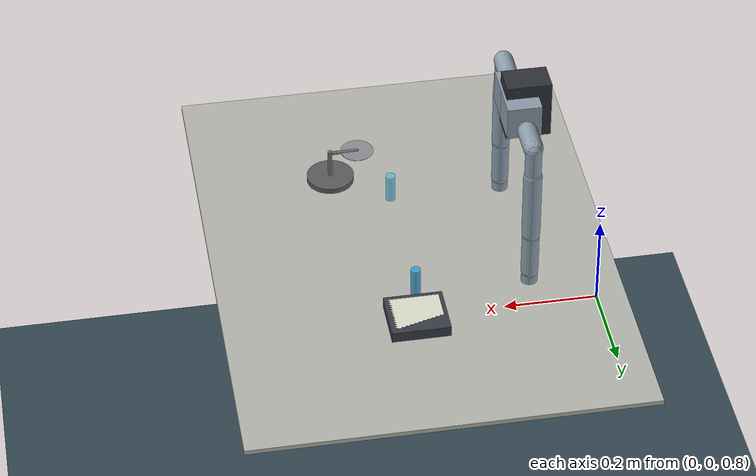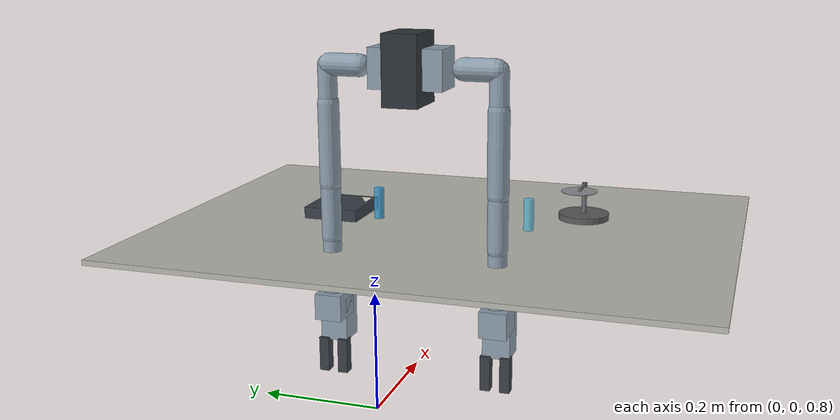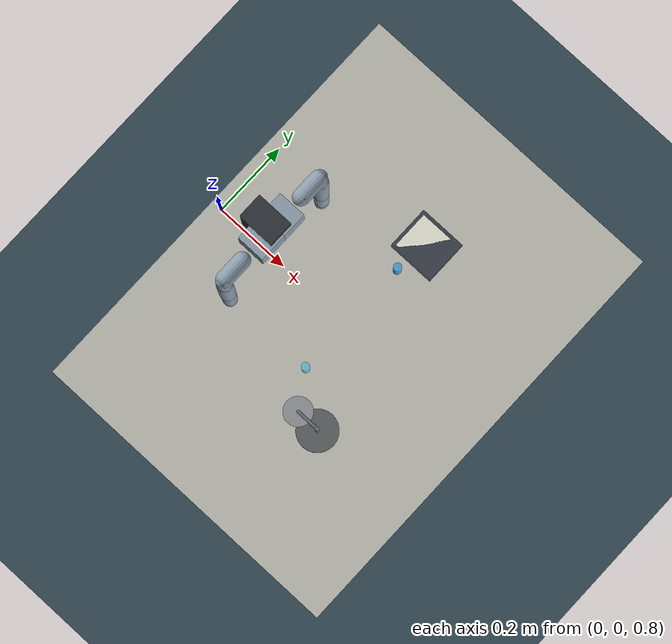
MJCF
<?xml version="1.0" encoding="utf-8"?>
<mujoco model="robobuddy_openarm_v2_phase5a">
  <compiler angle="radian"/>
  <option timestep="0.001" integrator="Euler" cone="elliptic" impratio="10"/>

  <default>
    <joint stiffness="0" ref="0" limited="true"/>
    <default class="collision">
      <geom contype="1" conaffinity="1" condim="3" friction="1 0.01 0.001" solref="0.005 1" rgba="0.55 0.62 0.68 1"/>
    </default>
    <default class="fingerpad">
      <geom contype="1" conaffinity="1" condim="4" friction="1.2 0.01 0.001" solref="0.005 1" rgba="0.22 0.24 0.27 1"/>
    </default>
    <default class="motor_DM8009">
      <joint frictionloss="0.2" damping="1.0" armature="0.0081" type="hinge"/>
    </default>
    <default class="motor_DM4340">
      <joint frictionloss="0.1" damping="0.9" armature="0.1600" type="hinge"/>
    </default>
    <default class="motor_DM4310">
      <joint frictionloss="0.04" damping="0.9" armature="0.0100" type="hinge"/>
    </default>
    <default class="motor_DM3507">
      <joint frictionloss="0.01" damping="0.01" armature="0.0049" type="hinge"/>
    </default>
    <default class="motor_finger">
      <joint damping="2" armature="0.01" type="hinge"/>
    </default>
  </default>

  <worldbody>
    <geom name="floor" type="plane" size="2 2 0.05" rgba="0.20 0.28 0.32 1" friction="1 0.01 0.001"/>
    <geom name="cell_table_col" type="box" pos="0.41 0 1.000" size="0.41 0.55 0.005" class="collision" rgba="0.72 0.72 0.69 1"/>
    <geom name="hotplate_body" type="box" pos="0.4318 0.2397 1.0165" size="0.060 0.055 0.0115" class="collision" rgba="0.22 0.24 0.28 1"/>
    <geom name="hotplate_top" type="box" pos="0.4318 0.2397 1.0275" size="0.052 0.047 0.0005" class="collision" rgba="0.88 0.88 0.82 1"/>
    <geom name="ringstand_base" type="cylinder" pos="0.535 -0.2397 1.011" size="0.050 0.006" class="collision" rgba="0.35 0.36 0.37 1"/>
    <geom name="ringstand_post" type="cylinder" pos="0.535 -0.2397 1.045" size="0.005 0.034" class="collision" rgba="0.42 0.43 0.45 1"/>
    <geom name="ringstand_arm" type="capsule" fromto="0.535 -0.2397 1.0745 0.4771 -0.2397 1.0745" size="0.004" class="collision" rgba="0.42 0.43 0.45 1"/>
    <geom name="wire_gauze_support" type="cylinder" pos="0.4771 -0.2397 1.0745" size="0.035 0.0005" class="collision" rgba="0.55 0.56 0.58 1"/>

    <body name="openarm_mount" pos="0.185 0 1.34">
      <inertial pos="0 0 0" mass="5" diaginertia="0.1 0.1 0.1"/>
      <geom name="mount_collision" type="box" pos="-0.01575 0 0" size="0.04575 0.031 0.061" class="collision" rgba="0.18 0.20 0.22 1"/>

      <body name="openarm_left_base_link" pos="0 0.031 0">
        <inertial pos="-0.00253124 0.0258186 -2.70658e-05" quat="-1.46856942085e-06 0.70739772103 0.706815721259 2.1457591538e-05" mass="1.14323" diaginertia="0.00159935 0.00113608 0.000750542"/>
        <geom name="left_base_col" type="box" size="0.035 0.035 0.035" class="collision"/>
        <body name="openarm_left_link1" pos="0 0.0625 0">
          <joint name="openarm_left_joint1" axis="0 1 0" range="-3.4907 1.3963" actuatorfrcrange="-40 40" class="motor_DM8009"/>
          <inertial pos="0.00090035 0.044466 2.88441e-05" quat="0.999901 -0.000371041 -5.04627e-05 -0.0140338" mass="1.14167" diaginertia="0.00109459 0.000758935 0.000670659"/>
          <geom name="left_link1_col" type="capsule" fromto="0 0 0 0 0.055 0" size="0.020" class="collision"/>
          <body name="openarm_left_link2" pos="0 0.06 0">
            <joint name="openarm_left_joint2" axis="-1 0 0" range="-3.3161 0.17453" actuatorfrcrange="-40 40" class="motor_DM8009"/>
            <inertial pos="-0.0247185 -7.60578e-08 -0.0312643" quat="0.999342 -6.47495e-06 -0.0362804 3.02331e-06" mass="0.277509" diaginertia="0.000153968 0.000113062 8.19211e-05"/>
            <geom name="left_link2_col" type="capsule" fromto="0 0 0 0 0 -0.060" size="0.017" class="collision"/>
            <body name="openarm_left_link3" pos="0 0 -0.06625">
              <joint name="openarm_left_joint3" axis="0 0 -1" range="-1.5708 1.5708" actuatorfrcrange="-27 27" class="motor_DM4340"/>
              <inertial pos="-0.00300862 -0.000514813 -0.109368" quat="0.998906 -0.00891348 0.0458105 0.00280505" mass="1.07386" diaginertia="0.00129561 0.00114038 0.000553361"/>
              <geom name="left_link3_col" type="capsule" fromto="0 0 0 0 0 -0.145" size="0.019" class="collision"/>
              <body name="openarm_left_link4" pos="0 0 -0.15375">
                <joint name="openarm_left_joint4" axis="0 -1 0" range="0 2.4435" actuatorfrcrange="-27 27" class="motor_DM4340"/>
                <inertial pos="-0.00310326 -0.00136539 -0.0574601" quat="0.996952 0.00947325 0.00348083 0.0773554" mass="0.634853" diaginertia="0.000469894 0.000433114 0.000245134"/>
                <geom name="left_link4_col" type="capsule" fromto="0 0 0 0 0 -0.088" size="0.018" class="collision"/>
                <body name="openarm_left_link5" pos="0 0 -0.0955">
                  <joint name="openarm_left_joint5" axis="0 0 -1" range="-1.5708 1.5708" actuatorfrcrange="-7 7" class="motor_DM4310"/>
                  <inertial pos="-0.000737189 0.000412407 -0.0470938" quat="0.685547 -0.0023482 -0.00297125 0.728019" mass="0.615659" diaginertia="0.000334799 0.00027946 0.000176657"/>
                  <geom name="left_link5_col" type="capsule" fromto="0 0 0 0 0 -0.112" size="0.017" class="collision"/>
                  <body name="openarm_left_link6" pos="0 0 -0.1205">
                    <joint name="openarm_left_joint6" axis="0 -1 0" range="-0.7854 0.7854" actuatorfrcrange="-7 7" class="motor_DM4310"/>
                    <inertial pos="2.27438e-05 -0.000686496 5.44e-05" quat="0.999832 -0.0183155 0.000397003 -0.000757974" mass="0.475203" diaginertia="0.000179276 0.000136249 0.000135339"/>
                    <geom name="left_link6_col" type="box" size="0.030 0.025 0.024" class="collision"/>
                    <body name="openarm_left_ee_base_link">
                      <joint name="openarm_left_joint7" axis="1 0 0" range="-1.5708 1.5708" actuatorfrcrange="-7 7" class="motor_DM3507"/>
                      <inertial pos="0.0137902 -0.0084073 -0.05938" quat="0.760121 0.648846 -0.0304587 -0.0169317" mass="0.52832" diaginertia="0.000219417 0.000166122 0.000155742"/>
                      <geom name="left_ee_col" type="box" pos="0.0205 0 -0.030" size="0.025 0.025 0.040" class="collision"/>
                      <body name="openarm_left_ee_inner_finger" pos="-0.00143 -0.018 -0.068">
                        <joint name="openarm_left_finger_joint1" axis="-1 0 0" range="0 0.7854" actuatorfrcrange="-10 10" class="motor_finger"/>
                        <inertial pos="-0.0124991 -0.00176593 -0.0241663" quat="0.982638 0.0922084 -0.15927 -0.0235197" mass="0.125979" diaginertia="3.8543e-05 3.6883e-05 1.43942e-05"/>
                        <geom name="left_inner_finger_pad" type="box" pos="0 0 -0.030" size="0.010 0.009 0.032" class="fingerpad"/>
                      </body>
                      <body name="openarm_left_ee_outer_finger" pos="-0.00143 0.018 -0.068">
                        <joint name="openarm_left_finger_joint2" axis="1 0 0" range="0 0.7854" actuatorfrcrange="-10 10" class="motor_finger"/>
                        <inertial pos="-0.012796 0.0020183 -0.026792" quat="0.982097 -0.0906989 -0.165079 0.00294117" mass="0.11372" diaginertia="3.70662e-05 3.60159e-05 1.33599e-05"/>
                        <geom name="left_outer_finger_pad" type="box" pos="0 0 -0.030" size="0.010 0.009 0.032" class="fingerpad"/>
                      </body>
                    </body>
                  </body>
                </body>
              </body>
            </body>
          </body>
        </body>
      </body>

      <body name="openarm_right_base_link" pos="0 -0.031 0">
        <inertial pos="-0.00253124 -0.0258186 -2.70658e-05" quat="2.1457591538e-05 0.706815721259 0.70739772103 -1.46856942085e-06" mass="1.14323" diaginertia="0.00159935 0.00113608 0.000750542"/>
        <geom name="right_base_col" type="box" size="0.035 0.035 0.035" class="collision"/>
        <body name="openarm_right_link1" pos="0 -0.0625 0">
          <joint name="openarm_right_joint1" axis="0 -1 0" range="-1.3963 3.4907" actuatorfrcrange="-40 40" class="motor_DM8009"/>
          <inertial pos="0.00090035 -0.044466 2.88441e-05" quat="0.999901 0.000371041 -5.04627e-05 0.0140338" mass="1.14167" diaginertia="0.00109459 0.000758935 0.000670659"/>
          <geom name="right_link1_col" type="capsule" fromto="0 0 0 0 -0.055 0" size="0.020" class="collision"/>
          <body name="openarm_right_link2" pos="0 -0.06 0">
            <joint name="openarm_right_joint2" axis="-1 0 0" range="-0.17453 3.3161" actuatorfrcrange="-40 40" class="motor_DM8009"/>
            <inertial pos="-0.0247185 7.60578e-08 -0.0312643" quat="0.999342 6.47495e-06 -0.0362804 -3.02331e-06" mass="0.277509" diaginertia="0.000153968 0.000113062 8.19211e-05"/>
            <geom name="right_link2_col" type="capsule" fromto="0 0 0 0 0 -0.060" size="0.017" class="collision"/>
            <body name="openarm_right_link3" pos="0 0 -0.06625">
              <joint name="openarm_right_joint3" axis="0 0 -1" range="-1.5708 1.5708" actuatorfrcrange="-27 27" class="motor_DM4340"/>
              <inertial pos="-0.00300862 -0.000514813 -0.109368" quat="0.998906 -0.00891348 0.0458105 0.00280505" mass="1.07386" diaginertia="0.00129561 0.00114038 0.000553361"/>
              <geom name="right_link3_col" type="capsule" fromto="0 0 0 0 0 -0.145" size="0.019" class="collision"/>
              <body name="openarm_right_link4" pos="0 0 -0.15375">
                <joint name="openarm_right_joint4" axis="0 -1 0" range="0 2.4435" actuatorfrcrange="-27 27" class="motor_DM4340"/>
                <inertial pos="-0.00310326 -0.00136539 -0.0574601" quat="0.996952 0.00947325 0.00348083 0.0773554" mass="0.634853" diaginertia="0.000469894 0.000433114 0.000245134"/>
                <geom name="right_link4_col" type="capsule" fromto="0 0 0 0 0 -0.088" size="0.018" class="collision"/>
                <body name="openarm_right_link5" pos="0 0 -0.0955">
                  <joint name="openarm_right_joint5" axis="0 0 -1" range="-1.5708 1.5708" actuatorfrcrange="-7 7" class="motor_DM4310"/>
                  <inertial pos="-0.000737189 -0.000412407 -0.0470938" quat="0.728019 -0.00297125 -0.0023482 0.685547" mass="0.615659" diaginertia="0.000334799 0.00027946 0.000176657"/>
                  <geom name="right_link5_col" type="capsule" fromto="0 0 0 0 0 -0.112" size="0.017" class="collision"/>
                  <body name="openarm_right_link6" pos="0 0 -0.1205">
                    <joint name="openarm_right_joint6" axis="0 1 0" range="-0.7854 0.7854" actuatorfrcrange="-7 7" class="motor_DM4310"/>
                    <inertial pos="2.27438e-05 0.000686496 5.44e-05" quat="0.999832 0.0183155 0.000397003 0.000757974" mass="0.475203" diaginertia="0.000179276 0.000136249 0.000135339"/>
                    <geom name="right_link6_col" type="box" size="0.030 0.025 0.024" class="collision"/>
                    <body name="openarm_right_ee_base_link">
                      <joint name="openarm_right_joint7" axis="1 0 0" range="-1.5708 1.5708" actuatorfrcrange="-7 7" class="motor_DM3507"/>
                      <inertial pos="0.0137902 0.0084073 -0.05938" quat="0.648846 0.760121 0.0169317 0.0304587" mass="0.52832" diaginertia="0.000219417 0.000166122 0.000155742"/>
                      <geom name="right_ee_col" type="box" pos="0.0205 0 -0.030" size="0.025 0.025 0.040" class="collision"/>
                      <body name="openarm_right_ee_inner_finger" pos="-0.00143 0.018 -0.068">
                        <joint name="openarm_right_finger_joint1" axis="-1 0 0" range="-0.7854 0" actuatorfrcrange="-10 10" class="motor_finger"/>
                        <inertial pos="-0.0124991 0.00176593 -0.0241663" quat="0.982638 -0.0922084 -0.15927 0.0235197" mass="0.125979" diaginertia="3.8543e-05 3.6883e-05 1.43942e-05"/>
                        <geom name="right_inner_finger_pad" type="box" pos="0 0 -0.030" size="0.010 0.009 0.032" class="fingerpad"/>
                      </body>
                      <body name="openarm_right_ee_outer_finger" pos="-0.00143 -0.018 -0.068">
                        <joint name="openarm_right_finger_joint2" axis="1 0 0" range="-0.7854 0" actuatorfrcrange="-10 10" class="motor_finger"/>
                        <inertial pos="-0.012796 -0.0020183 -0.026792" quat="0.982097 0.0906989 -0.165079 -0.00294117" mass="0.11372" diaginertia="3.70662e-05 3.60159e-05 1.33599e-05"/>
                        <geom name="right_outer_finger_pad" type="box" pos="0 0 -0.030" size="0.010 0.009 0.032" class="fingerpad"/>
                      </body>
                    </body>
                  </body>
                </body>
              </body>
            </body>
          </body>
        </body>
      </body>
    </body>

    <body name="phase5a_flask" pos="0.41954 0.1535 1.0357">
      <freejoint name="phase5a_flask_free"/>
      <inertial pos="0 0 0" mass="0.025" diaginertia="1.2e-05 1.2e-05 3.0e-06"/>
      <geom name="phase5a_flask_geom" type="cylinder" size="0.010 0.0307" rgba="0.25 0.65 0.88 0.85" friction="1.2 0.01 0.001" condim="4"/>
    </body>
    <body name="phase5a_beaker" pos="0.41954 -0.1535 1.0357">
      <freejoint name="phase5a_beaker_free"/>
      <inertial pos="0 0 0" mass="0.022" diaginertia="1.05e-05 1.05e-05 2.8e-06"/>
      <geom name="phase5a_beaker_geom" type="cylinder" size="0.010 0.0307" rgba="0.35 0.78 0.92 0.72" friction="1.2 0.01 0.001" condim="4"/>
    </body>
  </worldbody>

  <equality>
    <joint name="openarm_left_ee_finger_joint_mimic" joint1="openarm_left_finger_joint1" joint2="openarm_left_finger_joint2" polycoef="0 1 0 0 0" solimp="0.95 0.99 0.001" solref="0.005 1"/>
    <joint name="openarm_right_ee_finger_joint_mimic" joint1="openarm_right_finger_joint1" joint2="openarm_right_finger_joint2" polycoef="0 1 0 0 0" solimp="0.95 0.99 0.001" solref="0.005 1"/>
  </equality>

  <actuator>
    <position name="left_joint1_ctrl" joint="openarm_left_joint1" kp="230" kv="2.7" forcelimited="true" forcerange="-40 40" ctrllimited="true" ctrlrange="-3.49066 1.39626"/>
    <position name="left_joint2_ctrl" joint="openarm_left_joint2" kp="230" kv="2.7" forcelimited="true" forcerange="-40 40" ctrllimited="true" ctrlrange="-3.31613 0.174533"/>
    <position name="left_joint3_ctrl" joint="openarm_left_joint3" kp="190" kv="2.2" forcelimited="true" forcerange="-27 27" ctrllimited="true" ctrlrange="-1.5708 1.5708"/>
    <position name="left_joint4_ctrl" joint="openarm_left_joint4" kp="190" kv="2.2" forcelimited="true" forcerange="-27 27" ctrllimited="true" ctrlrange="0 2.44346"/>
    <position name="left_joint5_ctrl" joint="openarm_left_joint5" kp="30" kv="1.5" forcelimited="true" forcerange="-7 7" ctrllimited="true" ctrlrange="-1.5708 1.5708"/>
    <position name="left_joint6_ctrl" joint="openarm_left_joint6" kp="30" kv="1.5" forcelimited="true" forcerange="-7 7" ctrllimited="true" ctrlrange="-0.785398 0.785398"/>
    <position name="left_joint7_ctrl" joint="openarm_left_joint7" kp="30" kv="1.5" forcelimited="true" forcerange="-7 7" ctrllimited="true" ctrlrange="-1.5708 1.5708"/>
    <position name="left_finger1_ctrl" joint="openarm_left_finger_joint1" kp="30" kv="0.2" forcelimited="true" forcerange="-7 7" ctrllimited="true" ctrlrange="0 0.7854"/>
    <position name="right_joint1_ctrl" joint="openarm_right_joint1" kp="230" kv="2.7" forcelimited="true" forcerange="-40 40" ctrllimited="true" ctrlrange="-1.39626 3.49066"/>
    <position name="right_joint2_ctrl" joint="openarm_right_joint2" kp="230" kv="2.7" forcelimited="true" forcerange="-40 40" ctrllimited="true" ctrlrange="-0.174533 3.31613"/>
    <position name="right_joint3_ctrl" joint="openarm_right_joint3" kp="190" kv="2.2" forcelimited="true" forcerange="-27 27" ctrllimited="true" ctrlrange="-1.5708 1.5708"/>
    <position name="right_joint4_ctrl" joint="openarm_right_joint4" kp="190" kv="2.2" forcelimited="true" forcerange="-27 27" ctrllimited="true" ctrlrange="0 2.44346"/>
    <position name="right_joint5_ctrl" joint="openarm_right_joint5" kp="30" kv="1.5" forcelimited="true" forcerange="-7 7" ctrllimited="true" ctrlrange="-1.5708 1.5708"/>
    <position name="right_joint6_ctrl" joint="openarm_right_joint6" kp="30" kv="1.5" forcelimited="true" forcerange="-7 7" ctrllimited="true" ctrlrange="-0.785398 0.785398"/>
    <position name="right_joint7_ctrl" joint="openarm_right_joint7" kp="30" kv="1.5" forcelimited="true" forcerange="-7 7" ctrllimited="true" ctrlrange="-1.5708 1.5708"/>
    <position name="right_finger1_ctrl" joint="openarm_right_finger_joint1" kp="30" kv="0.2" forcelimited="true" forcerange="-7 7" ctrllimited="true" ctrlrange="-0.7854 0"/>
  </actuator>
</mujoco>
